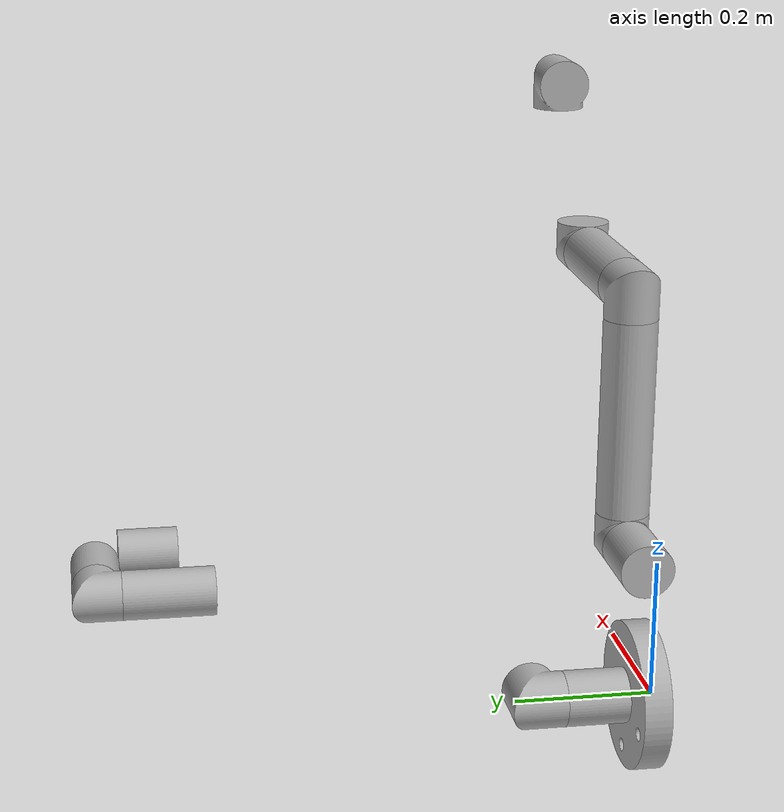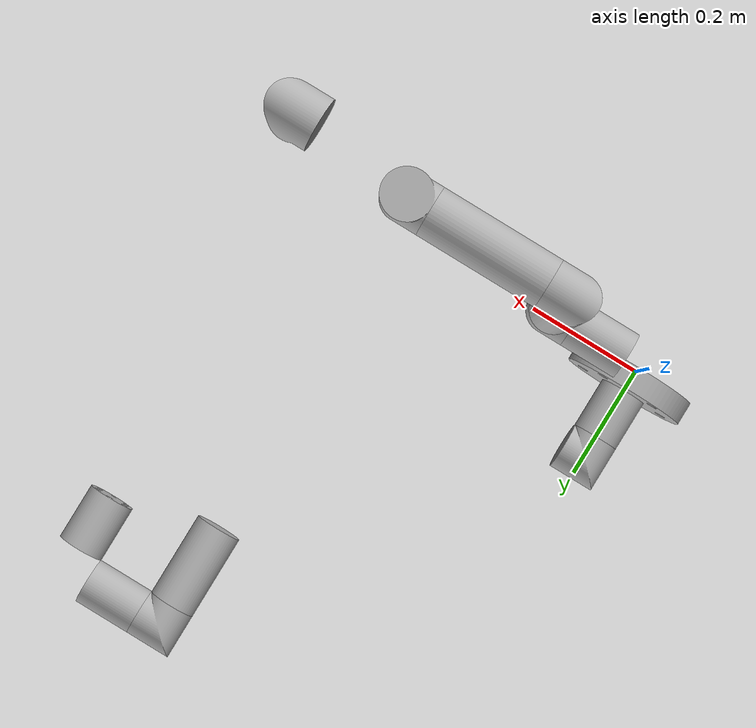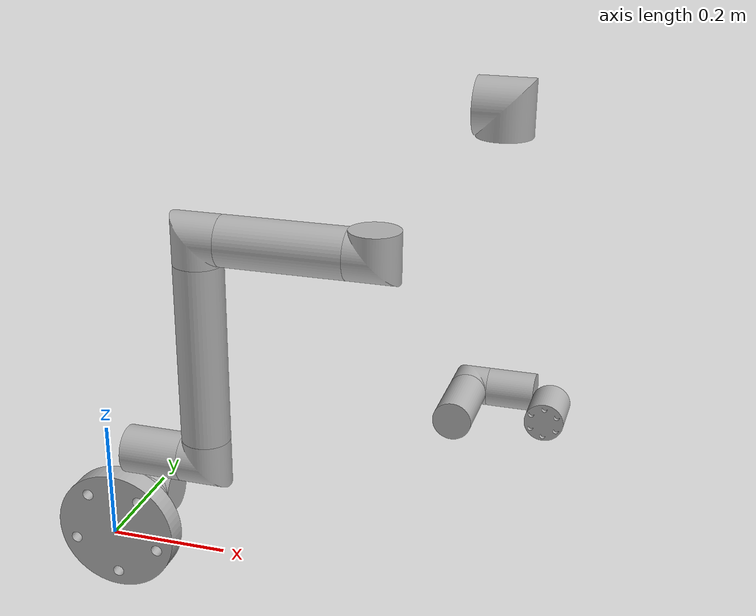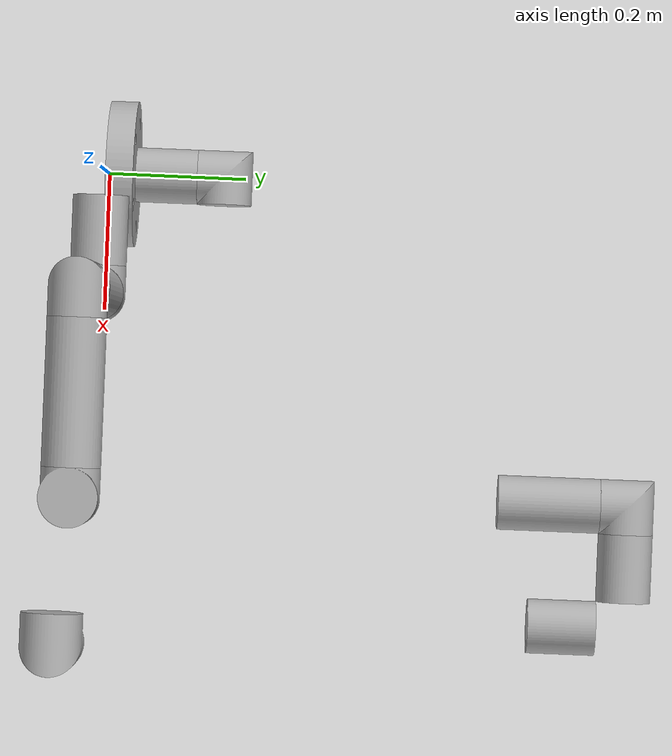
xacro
<?xml version="1.0" ?>
<robot name="project_fail" xmlns:xacro="http://www.ros.org/wiki/xacro">

<xacro:include filename="$(find project_fail_description)/urdf/materials.xacro" />
<xacro:include filename="$(find project_fail_description)/urdf/project_fail.trans" />
<xacro:include filename="$(find project_fail_description)/urdf/project_fail.gazebo" />
<link name="base_link">
  <inertial>
    <origin rpy="0 0 0" xyz="0.06553112819614043 0.11947443798309537 -0.16562441414097584"/>
    <mass value="9.564159415215094"/>
    <inertia ixx="0.031271" ixy="0.0" ixz="0.0" iyy="0.059921" iyz="0.0" izz="0.031271"/>
  </inertial>
  <visual>
    <origin rpy="0 0 0" xyz="0 0 0"/>
    <geometry>
      <mesh filename="package://project_fail_description/meshes/base_link.stl" scale="0.001 0.001 0.001"/>
    </geometry>
    <material name="silver"/>
  </visual>
  <collision>
    <origin rpy="0 0 0" xyz="0 0 0"/>
    <geometry>
      <mesh filename="package://project_fail_description/meshes/base_link.stl" scale="0.001 0.001 0.001"/>
    </geometry>
  </collision>
</link>

<link name="Component14_1">
  <inertial>
    <origin rpy="0 0 0" xyz="1.2819601924451973e-07 -0.04938390057303521 -4.072337179694685e-07"/>
    <mass value="3.892571527874509"/>
    <inertia ixx="0.004732" ixy="0.0" ixz="0.0" iyy="0.003108" iyz="-0.0" izz="0.004732"/>
  </inertial>
  <visual>
    <origin rpy="0 0 0" xyz="-0.705531 -0.840093 0.165624"/>
    <geometry>
      <mesh filename="package://project_fail_description/meshes/Component14_1.stl" scale="0.001 0.001 0.001"/>
    </geometry>
    <material name="silver"/>
  </visual>
  <collision>
    <origin rpy="0 0 0" xyz="-0.705531 -0.840093 0.165624"/>
    <geometry>
      <mesh filename="package://project_fail_description/meshes/Component14_1.stl" scale="0.001 0.001 0.001"/>
    </geometry>
  </collision>
</link>

<link name="Component13_1">
  <inertial>
    <origin rpy="0 0 0" xyz="0.037500128195991356 -0.0024997140550397923 -4.029658044191198e-07"/>
    <mass value="3.156672298327022"/>
    <inertia ixx="0.002716" ixy="2e-05" ixz="0.0" iyy="0.002716" iyz="-0.0" izz="0.002907"/>
  </inertial>
  <visual>
    <origin rpy="0 0 0" xyz="-0.665531 -0.880093 0.165624"/>
    <geometry>
      <mesh filename="package://project_fail_description/meshes/Component13_1.stl" scale="0.001 0.001 0.001"/>
    </geometry>
    <material name="silver"/>
  </visual>
  <collision>
    <origin rpy="0 0 0" xyz="-0.665531 -0.880093 0.165624"/>
    <geometry>
      <mesh filename="package://project_fail_description/meshes/Component13_1.stl" scale="0.001 0.001 0.001"/>
    </geometry>
  </collision>
</link>

<link name="Component12_1">
  <inertial>
    <origin rpy="0 0 0" xyz="0.05000012819598754 2.8594492695876994e-07 -4.0284299973603055e-07"/>
    <mass value="3.9458403729087737"/>
    <inertia ixx="0.003157" ixy="0.0" ixz="0.0" iyy="0.004867" iyz="0.0" izz="0.004867"/>
  </inertial>
  <visual>
    <origin rpy="0 0 0" xyz="-0.565531 -0.880093 0.165624"/>
    <geometry>
      <mesh filename="package://project_fail_description/meshes/Component12_1.stl" scale="0.001 0.001 0.001"/>
    </geometry>
    <material name="silver"/>
  </visual>
  <collision>
    <origin rpy="0 0 0" xyz="-0.565531 -0.880093 0.165624"/>
    <geometry>
      <mesh filename="package://project_fail_description/meshes/Component12_1.stl" scale="0.001 0.001 0.001"/>
    </geometry>
  </collision>
</link>

<link name="Component11_1">
  <inertial>
    <origin rpy="0 0 0" xyz="0.0025001281959857735 0.037500285944893186 -4.029658045301421e-07"/>
    <mass value="3.1566722983270235"/>
    <inertia ixx="0.002716" ixy="-2e-05" ixz="-0.0" iyy="0.002716" iyz="-0.0" izz="0.002907"/>
  </inertial>
  <visual>
    <origin rpy="0 0 0" xyz="-0.525531 -0.840093 0.165624"/>
    <geometry>
      <mesh filename="package://project_fail_description/meshes/Component11_1.stl" scale="0.001 0.001 0.001"/>
    </geometry>
    <material name="silver"/>
  </visual>
  <collision>
    <origin rpy="0 0 0" xyz="-0.525531 -0.840093 0.165624"/>
    <geometry>
      <mesh filename="package://project_fail_description/meshes/Component11_1.stl" scale="0.001 0.001 0.001"/>
    </geometry>
  </collision>
</link>

<link name="Component10_1">
  <inertial>
    <origin rpy="0 0 0" xyz="1.2819602879243774e-07 0.07500028594488795 -4.084920150748683e-07"/>
    <mass value="5.918760559363167"/>
    <inertia ixx="0.013465" ixy="-0.0" ixz="0.0" iyy="0.004735" iyz="-0.0" izz="0.013465"/>
  </inertial>
  <visual>
    <origin rpy="0 0 0" xyz="-0.525531 -0.690093 0.165624"/>
    <geometry>
      <mesh filename="package://project_fail_description/meshes/Component10_1.stl" scale="0.001 0.001 0.001"/>
    </geometry>
    <material name="silver"/>
  </visual>
  <collision>
    <origin rpy="0 0 0" xyz="-0.525531 -0.690093 0.165624"/>
    <geometry>
      <mesh filename="package://project_fail_description/meshes/Component10_1.stl" scale="0.001 0.001 0.001"/>
    </geometry>
  </collision>
</link>

<link name="Component9_1">
  <inertial>
    <origin rpy="0 0 0" xyz="0.03750012819607168 0.0025002859448831627 -4.1401822553632783e-07"/>
    <mass value="3.156672298327024"/>
    <inertia ixx="0.002716" ixy="-2e-05" ixz="-0.0" iyy="0.002716" iyz="-0.0" izz="0.002907"/>
  </inertial>
  <visual>
    <origin rpy="0 0 0" xyz="-0.485531 -0.650093 0.165624"/>
    <geometry>
      <mesh filename="package://project_fail_description/meshes/Component9_1.stl" scale="0.001 0.001 0.001"/>
    </geometry>
    <material name="silver"/>
  </visual>
  <collision>
    <origin rpy="0 0 0" xyz="-0.485531 -0.650093 0.165624"/>
    <geometry>
      <mesh filename="package://project_fail_description/meshes/Component9_1.stl" scale="0.001 0.001 0.001"/>
    </geometry>
  </collision>
</link>

<link name="Component8_1">
  <inertial>
    <origin rpy="0 0 0" xyz="0.10000012819606785 2.8594483192367903e-07 -4.1414103021941706e-07"/>
    <mass value="7.891680745817558"/>
    <inertia ixx="0.006313" ixy="-0.0" ixz="0.0" iyy="0.029462" iyz="0.0" izz="0.029462"/>
  </inertial>
  <visual>
    <origin rpy="0 0 0" xyz="-0.285531 -0.650093 0.165624"/>
    <geometry>
      <mesh filename="package://project_fail_description/meshes/Component8_1.stl" scale="0.001 0.001 0.001"/>
    </geometry>
    <material name="silver"/>
  </visual>
  <collision>
    <origin rpy="0 0 0" xyz="-0.285531 -0.650093 0.165624"/>
    <geometry>
      <mesh filename="package://project_fail_description/meshes/Component8_1.stl" scale="0.001 0.001 0.001"/>
    </geometry>
  </collision>
</link>

<link name="Component7_1">
  <inertial>
    <origin rpy="0 0 0" xyz="0.002500128196065571 0.037500285944780054 -4.1414102980308343e-07"/>
    <mass value="3.156672298327024"/>
    <inertia ixx="0.002716" ixy="-2e-05" ixz="0.0" iyy="0.002716" iyz="-0.0" izz="0.002907"/>
  </inertial>
  <visual>
    <origin rpy="0 0 0" xyz="-0.245531 -0.610093 0.165624"/>
    <geometry>
      <mesh filename="package://project_fail_description/meshes/Component7_1.stl" scale="0.001 0.001 0.001"/>
    </geometry>
    <material name="silver"/>
  </visual>
  <collision>
    <origin rpy="0 0 0" xyz="-0.245531 -0.610093 0.165624"/>
    <geometry>
      <mesh filename="package://project_fail_description/meshes/Component7_1.stl" scale="0.001 0.001 0.001"/>
    </geometry>
  </collision>
</link>

<link name="Component6_1">
  <inertial>
    <origin rpy="0 0 0" xyz="1.28196136622849e-07 0.1500002859447815 -4.141410031022197e-07"/>
    <mass value="11.837521118726334"/>
    <inertia ixx="0.093516" ixy="0.0" ixz="0.0" iyy="0.00947" iyz="0.0" izz="0.093516"/>
  </inertial>
  <visual>
    <origin rpy="0 0 0" xyz="-0.245531 -0.310093 0.165624"/>
    <geometry>
      <mesh filename="package://project_fail_description/meshes/Component6_1.stl" scale="0.001 0.001 0.001"/>
    </geometry>
    <material name="silver"/>
  </visual>
  <collision>
    <origin rpy="0 0 0" xyz="-0.245531 -0.310093 0.165624"/>
    <geometry>
      <mesh filename="package://project_fail_description/meshes/Component6_1.stl" scale="0.001 0.001 0.001"/>
    </geometry>
  </collision>
</link>

<link name="Component5_1">
  <inertial>
    <origin rpy="0 0 0" xyz="0.03750012819619311 0.00250028594478352 -4.1414097629033364e-07"/>
    <mass value="3.156672298327023"/>
    <inertia ixx="0.002716" ixy="-2e-05" ixz="-0.0" iyy="0.002716" iyz="-0.0" izz="0.002907"/>
  </inertial>
  <visual>
    <origin rpy="0 0 0" xyz="-0.205531 -0.270093 0.165624"/>
    <geometry>
      <mesh filename="package://project_fail_description/meshes/Component5_1.stl" scale="0.001 0.001 0.001"/>
    </geometry>
    <material name="silver"/>
  </visual>
  <collision>
    <origin rpy="0 0 0" xyz="-0.205531 -0.270093 0.165624"/>
    <geometry>
      <mesh filename="package://project_fail_description/meshes/Component5_1.stl" scale="0.001 0.001 0.001"/>
    </geometry>
  </collision>
</link>

<link name="Component4_1">
  <inertial>
    <origin rpy="0 0 0" xyz="0.05000012819619397 2.8594478318488825e-07 -4.1414097592951116e-07"/>
    <mass value="3.9458403729087808"/>
    <inertia ixx="0.003157" ixy="0.0" ixz="0.0" iyy="0.004867" iyz="0.0" izz="0.004867"/>
  </inertial>
  <visual>
    <origin rpy="0 0 0" xyz="-0.105531 -0.270093 0.165624"/>
    <geometry>
      <mesh filename="package://project_fail_description/meshes/Component4_1.stl" scale="0.001 0.001 0.001"/>
    </geometry>
    <material name="silver"/>
  </visual>
  <collision>
    <origin rpy="0 0 0" xyz="-0.105531 -0.270093 0.165624"/>
    <geometry>
      <mesh filename="package://project_fail_description/meshes/Component4_1.stl" scale="0.001 0.001 0.001"/>
    </geometry>
  </collision>
</link>

<link name="Component3_1">
  <inertial>
    <origin rpy="0 0 0" xyz="0.002500128196194301 0.037500285944783274 -4.14140975874e-07"/>
    <mass value="3.156672298327025"/>
    <inertia ixx="0.002716" ixy="-2e-05" ixz="0.0" iyy="0.002716" iyz="0.0" izz="0.002907"/>
  </inertial>
  <visual>
    <origin rpy="0 0 0" xyz="-0.065531 -0.230093 0.165624"/>
    <geometry>
      <mesh filename="package://project_fail_description/meshes/Component3_1.stl" scale="0.001 0.001 0.001"/>
    </geometry>
    <material name="silver"/>
  </visual>
  <collision>
    <origin rpy="0 0 0" xyz="-0.065531 -0.230093 0.165624"/>
    <geometry>
      <mesh filename="package://project_fail_description/meshes/Component3_1.stl" scale="0.001 0.001 0.001"/>
    </geometry>
  </collision>
</link>

<link name="Component2_1">
  <inertial>
    <origin rpy="0 0 0" xyz="1.281961943544463e-07 0.06000028594478318 -4.1414097584624443e-07"/>
    <mass value="4.735008447490534"/>
    <inertia ixx="0.007576" ixy="-0.0" ixz="0.0" iyy="0.003788" iyz="0.0" izz="0.007576"/>
  </inertial>
  <visual>
    <origin rpy="0 0 0" xyz="-0.065531 -0.110093 0.165624"/>
    <geometry>
      <mesh filename="package://project_fail_description/meshes/Component2_1.stl" scale="0.001 0.001 0.001"/>
    </geometry>
    <material name="silver"/>
  </visual>
  <collision>
    <origin rpy="0 0 0" xyz="-0.065531 -0.110093 0.165624"/>
    <geometry>
      <mesh filename="package://project_fail_description/meshes/Component2_1.stl" scale="0.001 0.001 0.001"/>
    </geometry>
  </collision>
</link>

<joint name="Rev41" type="continuous">
  <origin rpy="0 0 0" xyz="0.04 -0.04 0.0"/>
  <parent link="Component13_1"/>
  <child link="Component14_1"/>
  <axis xyz="0.0 -1.0 -0.0"/>
</joint>

<joint name="Rev42" type="continuous">
  <origin rpy="0 0 0" xyz="0.1 0.0 0.0"/>
  <parent link="Component12_1"/>
  <child link="Component13_1"/>
  <axis xyz="1.0 0.0 0.0"/>
</joint>

<joint name="Rev43" type="continuous">
  <origin rpy="0 0 0" xyz="0.04 0.04 0.0"/>
  <parent link="Component11_1"/>
  <child link="Component12_1"/>
  <axis xyz="1.0 0.0 0.0"/>
</joint>

<joint name="Rev44" type="continuous">
  <origin rpy="0 0 0" xyz="0.0 0.15 0.0"/>
  <parent link="Component10_1"/>
  <child link="Component11_1"/>
  <axis xyz="-0.0 1.0 0.0"/>
</joint>

<joint name="Rev45" type="continuous">
  <origin rpy="0 0 0" xyz="0.04 0.04 0.0"/>
  <parent link="Component9_1"/>
  <child link="Component10_1"/>
  <axis xyz="-0.0 1.0 0.0"/>
</joint>

<joint name="Rev46" type="continuous">
  <origin rpy="0 0 0" xyz="0.2 0.0 0.0"/>
  <parent link="Component8_1"/>
  <child link="Component9_1"/>
  <axis xyz="1.0 0.0 -0.0"/>
</joint>

<joint name="Rev47" type="continuous">
  <origin rpy="0 0 0" xyz="0.04 0.04 0.0"/>
  <parent link="Component7_1"/>
  <child link="Component8_1"/>
  <axis xyz="1.0 0.0 -0.0"/>
</joint>

<joint name="Rev48" type="continuous">
  <origin rpy="0 0 0" xyz="0.0 0.3 0.0"/>
  <parent link="Component6_1"/>
  <child link="Component7_1"/>
  <axis xyz="-0.0 1.0 -0.0"/>
</joint>

<joint name="Rev49" type="continuous">
  <origin rpy="0 0 0" xyz="0.04 0.04 0.0"/>
  <parent link="Component5_1"/>
  <child link="Component6_1"/>
  <axis xyz="-0.0 1.0 -0.0"/>
</joint>

<joint name="Rev50" type="continuous">
  <origin rpy="0 0 0" xyz="0.1 0.0 0.0"/>
  <parent link="Component4_1"/>
  <child link="Component5_1"/>
  <axis xyz="1.0 0.0 0.0"/>
</joint>

<joint name="Rev51" type="continuous">
  <origin rpy="0 0 0" xyz="0.04 0.04 0.0"/>
  <parent link="Component3_1"/>
  <child link="Component4_1"/>
  <axis xyz="1.0 0.0 0.0"/>
</joint>

<joint name="Rev52" type="continuous">
  <origin rpy="0 0 0" xyz="0.0 0.12 0.0"/>
  <parent link="Component2_1"/>
  <child link="Component3_1"/>
  <axis xyz="0.0 1.0 -0.0"/>
</joint>

<joint name="Rigid53" type="fixed">
  <origin rpy="0 0 0" xyz="0.065531 0.110093 -0.165624"/>
  <parent link="base_link"/>
  <child link="Component2_1"/>
</joint>

</robot>

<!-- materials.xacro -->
<robot name="project_fail" xmlns:xacro="http://www.ros.org/wiki/xacro" >

<material name="silver">
  <color rgba="0.700 0.700 0.700 1.000"/>
</material>

</robot>

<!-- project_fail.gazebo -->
<robot name="project_fail" xmlns:xacro="http://www.ros.org/wiki/xacro" >

<xacro:property name="body_color" value="Gazebo/Silver" />

<gazebo>
  <plugin filename="libgazebo_ros_control.so" name="control"/>
</gazebo>
<gazebo reference="base_link">
  <material>${body_color}</material>
  <mu1>0.2</mu1>
  <mu2>0.2</mu2>
  <selfCollide>true</selfCollide>
  <gravity>true</gravity>
</gazebo>

<gazebo reference="Component14_1">
  <material>${body_color}</material>
  <mu1>0.2</mu1>
  <mu2>0.2</mu2>
  <selfCollide>true</selfCollide>
</gazebo>

<gazebo reference="Component13_1">
  <material>${body_color}</material>
  <mu1>0.2</mu1>
  <mu2>0.2</mu2>
  <selfCollide>true</selfCollide>
</gazebo>

<gazebo reference="Component12_1">
  <material>${body_color}</material>
  <mu1>0.2</mu1>
  <mu2>0.2</mu2>
  <selfCollide>true</selfCollide>
</gazebo>

<gazebo reference="Component11_1">
  <material>${body_color}</material>
  <mu1>0.2</mu1>
  <mu2>0.2</mu2>
  <selfCollide>true</selfCollide>
</gazebo>

<gazebo reference="Component10_1">
  <material>${body_color}</material>
  <mu1>0.2</mu1>
  <mu2>0.2</mu2>
  <selfCollide>true</selfCollide>
</gazebo>

<gazebo reference="Component9_1">
  <material>${body_color}</material>
  <mu1>0.2</mu1>
  <mu2>0.2</mu2>
  <selfCollide>true</selfCollide>
</gazebo>

<gazebo reference="Component8_1">
  <material>${body_color}</material>
  <mu1>0.2</mu1>
  <mu2>0.2</mu2>
  <selfCollide>true</selfCollide>
</gazebo>

<gazebo reference="Component7_1">
  <material>${body_color}</material>
  <mu1>0.2</mu1>
  <mu2>0.2</mu2>
  <selfCollide>true</selfCollide>
</gazebo>

<gazebo reference="Component6_1">
  <material>${body_color}</material>
  <mu1>0.2</mu1>
  <mu2>0.2</mu2>
  <selfCollide>true</selfCollide>
</gazebo>

<gazebo reference="Component5_1">
  <material>${body_color}</material>
  <mu1>0.2</mu1>
  <mu2>0.2</mu2>
  <selfCollide>true</selfCollide>
</gazebo>

<gazebo reference="Component4_1">
  <material>${body_color}</material>
  <mu1>0.2</mu1>
  <mu2>0.2</mu2>
  <selfCollide>true</selfCollide>
</gazebo>

<gazebo reference="Component3_1">
  <material>${body_color}</material>
  <mu1>0.2</mu1>
  <mu2>0.2</mu2>
  <selfCollide>true</selfCollide>
</gazebo>

<gazebo reference="Component2_1">
  <material>${body_color}</material>
  <mu1>0.2</mu1>
  <mu2>0.2</mu2>
  <selfCollide>true</selfCollide>
</gazebo>

</robot>
